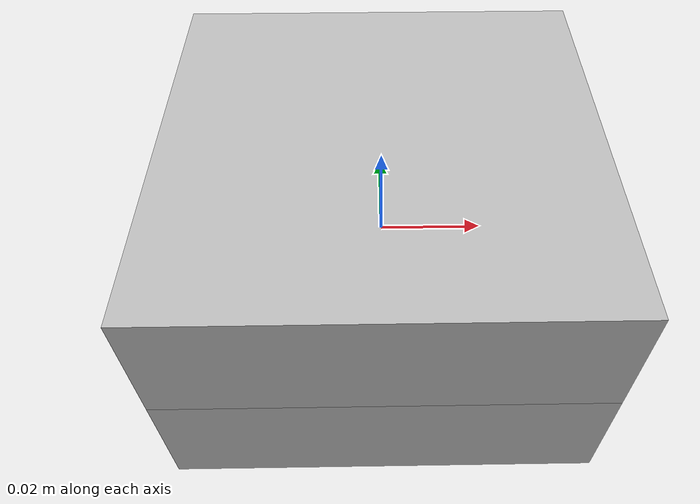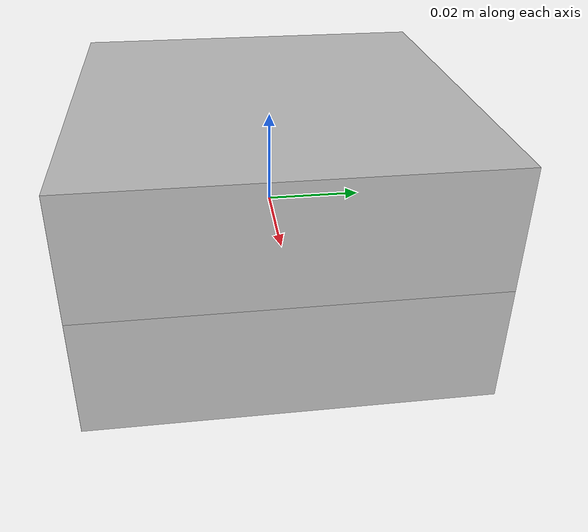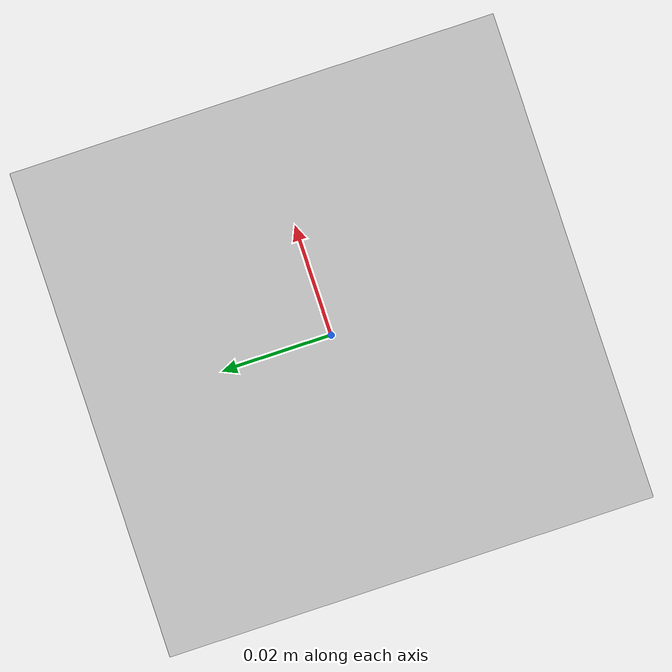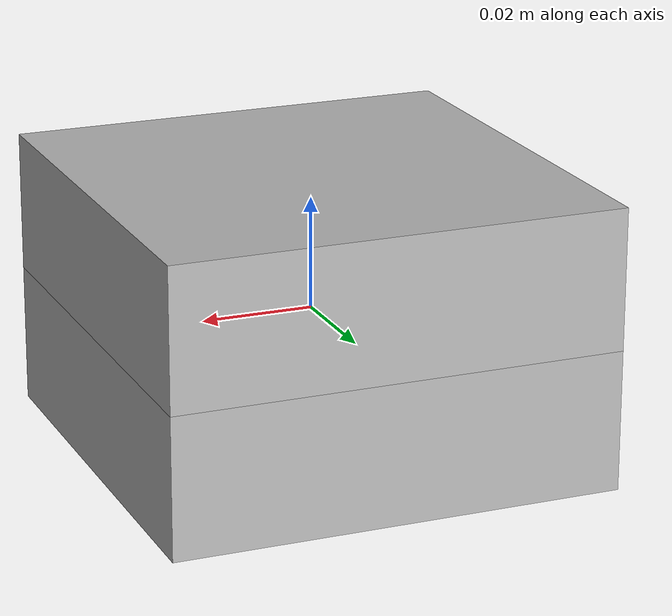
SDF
<sdf version='1.6'>
  <model name='cube'>
    <link name='base_link'>
      <pose frame=''>0 0 0 0 -0 0</pose>
      <inertial>
        <pose frame=''>0 0 0 0 -0 0</pose>
        <mass>0.32</mass>
        <inertia>
          <ixx>0.000237334</ixx>
          <ixy>2.6068e-20</ixy>
          <ixz>1.1294e-21</ixz>
          <iyy>0.000237334</iyy>
          <iyz>1.91102e-20</iyz>
          <izz>0.00034134</izz>
        </inertia>
      </inertial>
      <collision name='base_link_collision'>
        <pose frame=''>0 0 0 0 -0 0</pose>
        <geometry>
          <mesh>
            <scale>1 1 1</scale>
            <uri>model://cube/meshes/base_link.STL</uri>
          </mesh>
        </geometry>
      </collision>
      <collision name='base_link_fixed_joint_lump__c2_collision_1'>
        <pose frame=''>0 0 0.025 0 -0 0</pose>
        <geometry>
          <mesh>
            <scale>1 1 1</scale>
            <uri>model://cube/meshes/c2.STL</uri>
          </mesh>
        </geometry>
      </collision>
      <visual name='base_link_visual'>
        <pose frame=''>0 0 0 0 -0 0</pose>
        <geometry>
          <mesh>
            <scale>1 1 1</scale>
            <uri>model://cube/meshes/base_link.STL</uri>
          </mesh>
        </geometry>
      </visual>
      <visual name='base_link_fixed_joint_lump__c2_visual_1'>
        <pose frame=''>0 0 0.025 0 -0 0</pose>
        <geometry>
          <mesh>
            <scale>1 1 1</scale>
            <uri>model://cube/meshes/c2.STL</uri>
          </mesh>
        </geometry>
      </visual>
    </link>
  </model>
</sdf>
